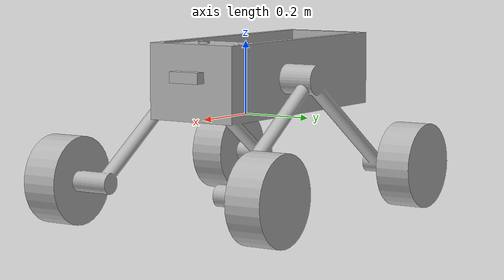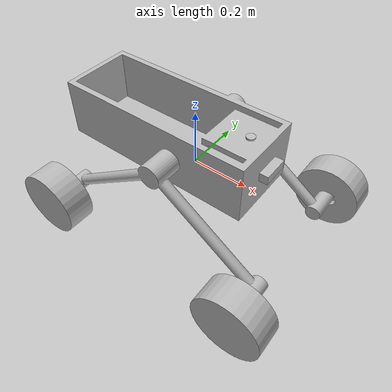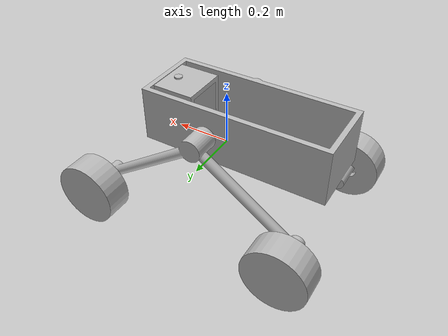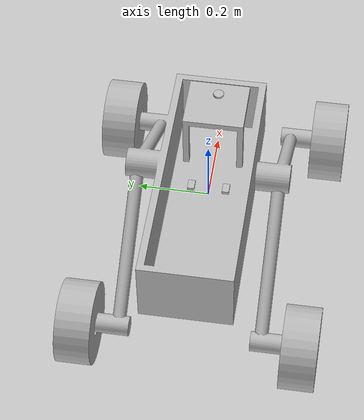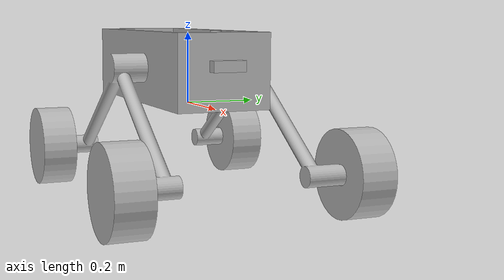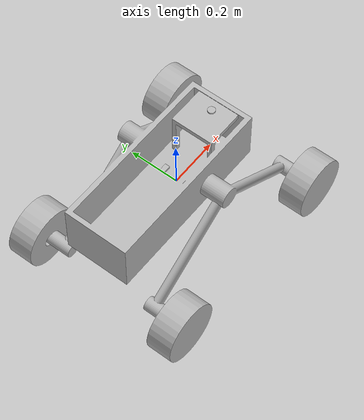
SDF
<sdf version='1.7'>
  <model name='rover'>
    <link name='base_link'>
      <inertial>
        <pose>-0.200164 -0.000145 0.033128 0 -0 0</pose>
        <mass>28.7484</mass>
        <inertia>
          <ixx>0.0457223</ixx>
          <ixy>-7.01039e-06</ixy>
          <ixz>-0.00418583</ixz>
          <iyy>0.263756</iyy>
          <iyz>-1.26833e-06</iyz>
          <izz>0.274375</izz>
        </inertia>
      </inertial>
      <collision name='base_link_collision'>
        <pose>0 0 0 0 -0 0</pose>
        <geometry>
          <mesh>
            <scale>1 1 1</scale>
            <uri>model://rover_sim/meshes/base_link.dae</uri>
          </mesh>
        </geometry>
        <surface>
          <contact>
            <ode/>
          </contact>
          <friction>
            <ode/>
          </friction>
        </surface>
      </collision>
      <visual name='base_link_visual'>
        <pose>0 0 0 0 -0 0</pose>
        <geometry>
          <mesh>
            <scale>1 1 1</scale>
            <uri>model://rover_sim/meshes/base_link.dae</uri>
          </mesh>
        </geometry>
      </visual>
      <visual name='base_link_fixed_joint_lump__camera_link_visual_1'>
        <pose>0.28 0 0.12 0 -0 0</pose>
        <geometry>
          <box>
            <size>0.03 0.09 0.03</size>
          </box>
        </geometry>
      </visual>
      <visual name='base_link_fixed_joint_lump__gps_link_visual_2'>
        <pose>0 -0.05 0.031 0 -0 0</pose>
        <geometry>
          <box>
            <size>0.03 0.02 0.01</size>
          </box>
        </geometry>
      </visual>
      <visual name='base_link_fixed_joint_lump__imu_link_visual_3'>
        <pose>0 0.05 0.031 0 -0 0</pose>
        <geometry>
          <box>
            <size>0.03 0.02 0.01</size>
          </box>
        </geometry>
      </visual>
      <visual name='base_link_fixed_joint_lump__lidar_link_visual_4'>
        <pose>0.2 0 0.20682 0 -0 0</pose>
        <geometry>
          <mesh>
            <scale>1 1 1</scale>
            <uri>model://rover_sim/meshes/lidar.dae</uri>
          </mesh>
        </geometry>
      </visual>
      <sensor name='gps' type='gps'>
        <always_on>1</always_on>
        <update_rate>10</update_rate>
        <visualize>1</visualize>
        <gps>
          <position_sensing>
            <horizontal>
              <noise type='gaussian'>
                <mean>0</mean>
                <stddev>0.0002</stddev>
              </noise>
            </horizontal>
            <vertical>
              <noise type='gaussian'>
                <mean>0</mean>
                <stddev>0.0004</stddev>
              </noise>
            </vertical>
          </position_sensing>
        </gps>
        <plugin name='gps' filename='libgazebo_ros_gps_sensor.so'>
          <ros>
            <namespace>/rover</namespace>
            <remapping>fix:=gps/fix</remapping>
          </ros>
          <frame_id>gps_link</frame_id>
        </plugin>
      </sensor>
      <sensor name='camera' type='depth'>
        <update_rate>5</update_rate>
        <visualize>1</visualize>
        <camera>
          <horizontal_fov>1.5708</horizontal_fov>
          <image>
            <format>R8G8B8</format>
            <width>640</width>
            <height>480</height>
          </image>
          <clip>
            <near>0.05</near>
            <far>20</far>
          </clip>
        </camera>
        <plugin name='depth_camera' filename='libgazebo_ros_camera.so'>
          <ros>
            <namespace>/rover</namespace>
          </ros>
          <frame_name>camera_frame_link</frame_name>
        </plugin>
        <pose>0.28 0 0.12 0 -0 0</pose>
      </sensor>
      <sensor name='imu_sensor' type='imu'>
        <always_on>1</always_on>
        <update_rate>100</update_rate>
        <visualize>1</visualize>
        <imu>
          <angular_velocity>
            <x>
              <noise type='gaussian'>
                <mean>0</mean>
                <stddev>0.0002</stddev>
              </noise>
            </x>
            <y>
              <noise type='gaussian'>
                <mean>0</mean>
                <stddev>0.0002</stddev>
              </noise>
            </y>
            <z>
              <noise type='gaussian'>
                <mean>0</mean>
                <stddev>0.0002</stddev>
              </noise>
            </z>
          </angular_velocity>
          <linear_acceleration>
            <x>
              <noise type='gaussian'>
                <mean>0</mean>
                <stddev>0.017</stddev>
              </noise>
            </x>
            <y>
              <noise type='gaussian'>
                <mean>0</mean>
                <stddev>0.017</stddev>
              </noise>
            </y>
            <z>
              <noise type='gaussian'>
                <mean>0</mean>
                <stddev>0.017</stddev>
              </noise>
            </z>
          </linear_acceleration>
        </imu>
        <plugin name='imu' filename='libgazebo_ros_imu_sensor.so'>
          <ros>
            <namespace>/rover</namespace>
            <remapping>~/out:=imu</remapping>
          </ros>
          <update_rate>100</update_rate>
          <frame_name>imu_link</frame_name>
        </plugin>
        <pose>0 0.05 0.031 0 -0 0</pose>
      </sensor>
      <sensor name='laser' type='ray'>
        <visualize>1</visualize>
        <update_rate>10</update_rate>
        <ray>
          <scan>
            <horizontal>
              <samples>1024</samples>
              <resolution>1</resolution>
              <min_angle>-3.14159</min_angle>
              <max_angle>3.14159</max_angle>
            </horizontal>
          </scan>
          <range>
            <min>0.1</min>
            <max>15</max>
            <resolution>0.1</resolution>
          </range>
        </ray>
        <plugin name='laser' filename='libgazebo_ros_ray_sensor.so'>
          <ros>
            <namespace>/rover</namespace>
            <remapping>~/out:=scan</remapping>
          </ros>
          <output_type>sensor_msgs/LaserScan</output_type>
          <frame_name>lidar_link</frame_name>
        </plugin>
        <pose>0.2 0 0.20682 0 -0 0</pose>
      </sensor>
    </link>
    <joint name='left_back_joint' type='revolute'>
      <pose relative_to='base_link'>-0.38139 0.31387 -0.16074 0 -0 0</pose>
      <parent>base_link</parent>
      <child>left_back</child>
      <axis>
        <xyz>0 1 0</xyz>
        <limit>
          <lower>-1e+16</lower>
          <upper>1e+16</upper>
        </limit>
        <dynamics>
          <spring_reference>0</spring_reference>
          <spring_stiffness>0</spring_stiffness>
        </dynamics>
      </axis>
    </joint>
    <link name='left_back'>
      <pose relative_to='left_back_joint'>0 0 0 0 -0 0</pose>
      <inertial>
        <pose>5.3e-05 0.04643 -0.000245 0 -0 0</pose>
        <mass>3.6</mass>
        <inertia>
          <ixx>0.017</ixx>
          <ixy>0</ixy>
          <ixz>0</ixz>
          <iyy>0.028</iyy>
          <iyz>0</iyz>
          <izz>0.017</izz>
        </inertia>
      </inertial>
      <collision name='left_back_collision'>
        <pose>0 0 0 0 -0 0</pose>
        <geometry>
          <mesh>
            <scale>1 1 1</scale>
            <uri>model://rover_sim/meshes/left_back.dae</uri>
          </mesh>
        </geometry>
      </collision>
      <visual name='left_back_visual'>
        <pose>0 0 0 0 -0 0</pose>
        <geometry>
          <mesh>
            <scale>1 1 1</scale>
            <uri>model://rover_sim/meshes/left_back.dae</uri>
          </mesh>
        </geometry>
      </visual>
    </link>
    <joint name='left_front_joint' type='revolute'>
      <pose relative_to='base_link'>0.38106 0.31837 -0.16074 0 -0 0</pose>
      <parent>base_link</parent>
      <child>left_front</child>
      <axis>
        <xyz>0 1 0</xyz>
        <limit>
          <lower>-1e+16</lower>
          <upper>1e+16</upper>
        </limit>
        <dynamics>
          <spring_reference>0</spring_reference>
          <spring_stiffness>0</spring_stiffness>
        </dynamics>
      </axis>
    </joint>
    <link name='left_front'>
      <pose relative_to='left_front_joint'>0 0 0 0 -0 0</pose>
      <inertial>
        <pose>5.3e-05 0.04643 -0.000245 0 -0 0</pose>
        <mass>3.6</mass>
        <inertia>
          <ixx>0.017</ixx>
          <ixy>0</ixy>
          <ixz>0</ixz>
          <iyy>0.028</iyy>
          <iyz>0</iyz>
          <izz>0.017</izz>
        </inertia>
      </inertial>
      <collision name='left_front_collision'>
        <pose>0 0 0 0 -0 0</pose>
        <geometry>
          <mesh>
            <scale>1 1 1</scale>
            <uri>model://rover_sim/meshes/left_front.dae</uri>
          </mesh>
        </geometry>
      </collision>
      <visual name='left_front_visual'>
        <pose>0 0 0 0 -0 0</pose>
        <geometry>
          <mesh>
            <scale>1 1 1</scale>
            <uri>model://rover_sim/meshes/left_front.dae</uri>
          </mesh>
        </geometry>
      </visual>
    </link>
    <joint name='right_back_joint' type='revolute'>
      <pose relative_to='base_link'>-0.38139 -0.31387 -0.16074 0 -0 0</pose>
      <parent>base_link</parent>
      <child>right_back</child>
      <axis>
        <xyz>0 1 0</xyz>
        <limit>
          <lower>-1e+16</lower>
          <upper>1e+16</upper>
        </limit>
        <dynamics>
          <spring_reference>0</spring_reference>
          <spring_stiffness>0</spring_stiffness>
        </dynamics>
      </axis>
    </joint>
    <link name='right_back'>
      <pose relative_to='right_back_joint'>0 0 0 0 -0 0</pose>
      <inertial>
        <pose>-5.3e-05 -0.04643 -0.000245 0 -0 0</pose>
        <mass>3.6</mass>
        <inertia>
          <ixx>0.017</ixx>
          <ixy>0</ixy>
          <ixz>0</ixz>
          <iyy>0.028</iyy>
          <iyz>0</iyz>
          <izz>0.017</izz>
        </inertia>
      </inertial>
      <collision name='right_back_collision'>
        <pose>0 0 0 0 -0 0</pose>
        <geometry>
          <mesh>
            <scale>1 1 1</scale>
            <uri>model://rover_sim/meshes/right_back.dae</uri>
          </mesh>
        </geometry>
      </collision>
      <visual name='right_back_visual'>
        <pose>0 0 0 0 -0 0</pose>
        <geometry>
          <mesh>
            <scale>1 1 1</scale>
            <uri>model://rover_sim/meshes/right_back.dae</uri>
          </mesh>
        </geometry>
      </visual>
    </link>
    <joint name='right_front_joint' type='revolute'>
      <pose relative_to='base_link'>0.38106 -0.31837 -0.16074 0 -0 0</pose>
      <parent>base_link</parent>
      <child>right_front</child>
      <axis>
        <xyz>0 1 0</xyz>
        <limit>
          <lower>-1e+16</lower>
          <upper>1e+16</upper>
        </limit>
        <dynamics>
          <spring_reference>0</spring_reference>
          <spring_stiffness>0</spring_stiffness>
        </dynamics>
      </axis>
    </joint>
    <link name='right_front'>
      <pose relative_to='right_front_joint'>0 0 0 0 -0 0</pose>
      <inertial>
        <pose>-5.3e-05 -0.04643 -0.000245 0 -0 0</pose>
        <mass>3.6</mass>
        <inertia>
          <ixx>0.017</ixx>
          <ixy>0</ixy>
          <ixz>0</ixz>
          <iyy>0.028</iyy>
          <iyz>0</iyz>
          <izz>0.016</izz>
        </inertia>
      </inertial>
      <collision name='right_front_collision'>
        <pose>0 0 0 0 -0 0</pose>
        <geometry>
          <mesh>
            <scale>1 1 1</scale>
            <uri>model://rover_sim/meshes/right_front.dae</uri>
          </mesh>
        </geometry>
      </collision>
      <visual name='right_front_visual'>
        <pose>0 0 0 0 -0 0</pose>
        <geometry>
          <mesh>
            <scale>1 1 1</scale>
            <uri>model://rover_sim/meshes/right_front.dae</uri>
          </mesh>
        </geometry>
      </visual>
    </link>
    <plugin name='joint_state_publisher' filename='libgazebo_ros_joint_state_publisher.so'>
      <ros>
        <namespace>/rover</namespace>
      </ros>
      <update_rate>50</update_rate>
      <joint_name>left_front_joint</joint_name>
      <joint_name>left_back_joint</joint_name>
      <joint_name>right_front_joint</joint_name>
      <joint_name>right_back_joint</joint_name>
    </plugin>
    <static>0</static>
    <plugin name='skid_steer_drive' filename='libgazebo_ros_diff_drive.so'>
      <ros>
        <namespace>/rover</namespace>
      </ros>
      <num_wheel_pairs>2</num_wheel_pairs>
      <update_rate>30</update_rate>
      <left_joint>left_front_joint</left_joint>
      <right_joint>right_front_joint</right_joint>
      <left_joint>left_back_joint</left_joint>
      <right_joint>right_back_joint</right_joint>
      <wheel_separation>0.76</wheel_separation>
      <wheel_separation>0.76</wheel_separation>
      <wheel_diameter>0.11</wheel_diameter>
      <wheel_diameter>0.11</wheel_diameter>
      <max_wheel_torque>20</max_wheel_torque>
      <max_wheel_acceleration>1.0</max_wheel_acceleration>
      <publish_odom>1</publish_odom>
      <publish_odom_tf>1</publish_odom_tf>
      <publish_wheel_tf>1</publish_wheel_tf>
      <odometry_frame>odom</odometry_frame>
      <robot_base_frame>base_link</robot_base_frame>
    </plugin>
  </model>
</sdf>
